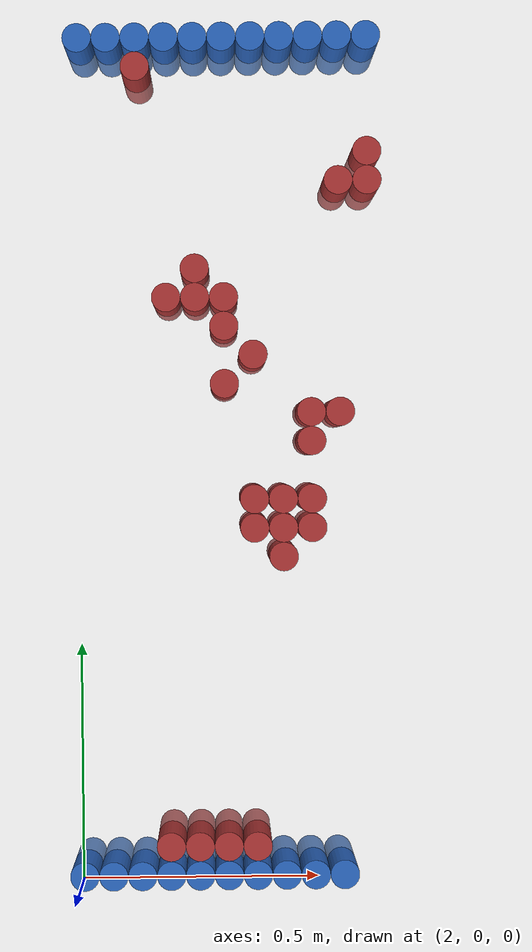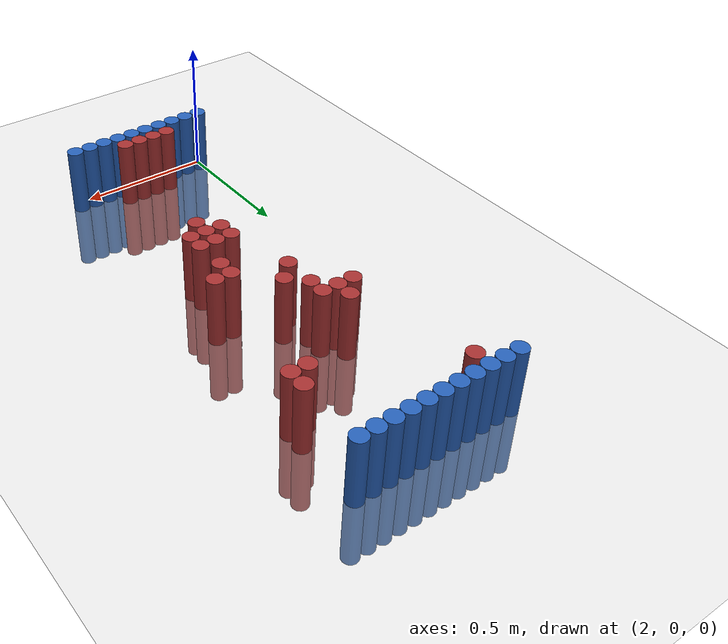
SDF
<sdf version="1.6">
 <world name="default">
  <model name="ground_plane">
   <static>1</static>
   <link name="link">
    <collision name="collision">
     <geometry><plane><normal>0 0 1</normal><size>100 100</size></plane></geometry>
     <surface><friction><ode><mu>100</mu><mu2>50</mu2></ode></friction></surface>
    </collision>
    <visual name="visual">
     <cast_shadows>0</cast_shadows>
     <geometry><plane><normal>0 0 1</normal><size>100 100</size></plane></geometry>
     <material>
      <script><uri>file://media/materials/scripts/gazebo.material</uri><name>Gazebo/Grey</name></script>
     </material>
    </visual>
   </link>
  </model>
  <model name="unit_cylinder_93">
   <static>1</static>
   <pose>2.010000 0.030000 0.000000 0.000000 0.000000 0.000000</pose>
   <link name="link">
    <inertial>
     <mass>1</mass>
     <inertia><ixx>0.145833</ixx><ixy>0</ixy><ixz>0</ixz><iyy>0.145833</iyy><iyz>0</iyz><izz>0.125</izz></inertia>
    </inertial>
    <collision name="collision">
     <geometry><cylinder><radius>0.030000</radius><length>0.5</length></cylinder></geometry>
    </collision>
    <visual name="visual">
     <geometry><cylinder><radius>0.030000</radius><length>0.5</length></cylinder></geometry>
     <material>
      <ambient>0.152000 0.379000 0.720000 1</ambient>
      <diffuse>0.152000 0.379000 0.720000 1</diffuse>
     </material>
     <material>
      <script><name>Gazebo/Grey</name><uri>file://media/materials/scripts/gazebo.material</uri></script>
     </material>
    </visual>
   </link>
  </model>
  <model name="unit_cylinder_94">
   <static>1</static>
   <pose>2.010000 1.770000 0.000000 0.000000 0.000000 0.000000</pose>
   <link name="link">
    <inertial>
     <mass>1</mass>
     <inertia><ixx>0.145833</ixx><ixy>0</ixy><ixz>0</ixz><iyy>0.145833</iyy><iyz>0</iyz><izz>0.125</izz></inertia>
    </inertial>
    <collision name="collision">
     <geometry><cylinder><radius>0.030000</radius><length>0.5</length></cylinder></geometry>
    </collision>
    <visual name="visual">
     <geometry><cylinder><radius>0.030000</radius><length>0.5</length></cylinder></geometry>
     <material>
      <ambient>0.152000 0.379000 0.720000 1</ambient>
      <diffuse>0.152000 0.379000 0.720000 1</diffuse>
     </material>
     <material>
      <script><name>Gazebo/Grey</name><uri>file://media/materials/scripts/gazebo.material</uri></script>
     </material>
    </visual>
   </link>
  </model>
  <model name="unit_cylinder_95">
   <static>1</static>
   <pose>2.070000 1.770000 0.000000 0.000000 0.000000 0.000000</pose>
   <link name="link">
    <inertial>
     <mass>1</mass>
     <inertia><ixx>0.145833</ixx><ixy>0</ixy><ixz>0</ixz><iyy>0.145833</iyy><iyz>0</iyz><izz>0.125</izz></inertia>
    </inertial>
    <collision name="collision">
     <geometry><cylinder><radius>0.030000</radius><length>0.5</length></cylinder></geometry>
    </collision>
    <visual name="visual">
     <geometry><cylinder><radius>0.030000</radius><length>0.5</length></cylinder></geometry>
     <material>
      <ambient>0.152000 0.379000 0.720000 1</ambient>
      <diffuse>0.152000 0.379000 0.720000 1</diffuse>
     </material>
     <material>
      <script><name>Gazebo/Grey</name><uri>file://media/materials/scripts/gazebo.material</uri></script>
     </material>
    </visual>
   </link>
  </model>
  <model name="unit_cylinder_96">
   <static>1</static>
   <pose>2.130000 1.770000 0.000000 0.000000 0.000000 0.000000</pose>
   <link name="link">
    <inertial>
     <mass>1</mass>
     <inertia><ixx>0.145833</ixx><ixy>0</ixy><ixz>0</ixz><iyy>0.145833</iyy><iyz>0</iyz><izz>0.125</izz></inertia>
    </inertial>
    <collision name="collision">
     <geometry><cylinder><radius>0.030000</radius><length>0.5</length></cylinder></geometry>
    </collision>
    <visual name="visual">
     <geometry><cylinder><radius>0.030000</radius><length>0.5</length></cylinder></geometry>
     <material>
      <ambient>0.152000 0.379000 0.720000 1</ambient>
      <diffuse>0.152000 0.379000 0.720000 1</diffuse>
     </material>
     <material>
      <script><name>Gazebo/Grey</name><uri>file://media/materials/scripts/gazebo.material</uri></script>
     </material>
    </visual>
   </link>
  </model>
  <model name="unit_cylinder_97">
   <static>1</static>
   <pose>2.190000 1.770000 0.000000 0.000000 0.000000 0.000000</pose>
   <link name="link">
    <inertial>
     <mass>1</mass>
     <inertia><ixx>0.145833</ixx><ixy>0</ixy><ixz>0</ixz><iyy>0.145833</iyy><iyz>0</iyz><izz>0.125</izz></inertia>
    </inertial>
    <collision name="collision">
     <geometry><cylinder><radius>0.030000</radius><length>0.5</length></cylinder></geometry>
    </collision>
    <visual name="visual">
     <geometry><cylinder><radius>0.030000</radius><length>0.5</length></cylinder></geometry>
     <material>
      <ambient>0.152000 0.379000 0.720000 1</ambient>
      <diffuse>0.152000 0.379000 0.720000 1</diffuse>
     </material>
     <material>
      <script><name>Gazebo/Grey</name><uri>file://media/materials/scripts/gazebo.material</uri></script>
     </material>
    </visual>
   </link>
  </model>
  <model name="unit_cylinder_98">
   <static>1</static>
   <pose>2.250000 1.770000 0.000000 0.000000 0.000000 0.000000</pose>
   <link name="link">
    <inertial>
     <mass>1</mass>
     <inertia><ixx>0.145833</ixx><ixy>0</ixy><ixz>0</ixz><iyy>0.145833</iyy><iyz>0</iyz><izz>0.125</izz></inertia>
    </inertial>
    <collision name="collision">
     <geometry><cylinder><radius>0.030000</radius><length>0.5</length></cylinder></geometry>
    </collision>
    <visual name="visual">
     <geometry><cylinder><radius>0.030000</radius><length>0.5</length></cylinder></geometry>
     <material>
      <ambient>0.152000 0.379000 0.720000 1</ambient>
      <diffuse>0.152000 0.379000 0.720000 1</diffuse>
     </material>
     <material>
      <script><name>Gazebo/Grey</name><uri>file://media/materials/scripts/gazebo.material</uri></script>
     </material>
    </visual>
   </link>
  </model>
  <model name="unit_cylinder_99">
   <static>1</static>
   <pose>2.310000 1.770000 0.000000 0.000000 0.000000 0.000000</pose>
   <link name="link">
    <inertial>
     <mass>1</mass>
     <inertia><ixx>0.145833</ixx><ixy>0</ixy><ixz>0</ixz><iyy>0.145833</iyy><iyz>0</iyz><izz>0.125</izz></inertia>
    </inertial>
    <collision name="collision">
     <geometry><cylinder><radius>0.030000</radius><length>0.5</length></cylinder></geometry>
    </collision>
    <visual name="visual">
     <geometry><cylinder><radius>0.030000</radius><length>0.5</length></cylinder></geometry>
     <material>
      <ambient>0.152000 0.379000 0.720000 1</ambient>
      <diffuse>0.152000 0.379000 0.720000 1</diffuse>
     </material>
     <material>
      <script><name>Gazebo/Grey</name><uri>file://media/materials/scripts/gazebo.material</uri></script>
     </material>
    </visual>
   </link>
  </model>
  <model name="unit_cylinder_100">
   <static>1</static>
   <pose>2.370000 1.770000 0.000000 0.000000 0.000000 0.000000</pose>
   <link name="link">
    <inertial>
     <mass>1</mass>
     <inertia><ixx>0.145833</ixx><ixy>0</ixy><ixz>0</ixz><iyy>0.145833</iyy><iyz>0</iyz><izz>0.125</izz></inertia>
    </inertial>
    <collision name="collision">
     <geometry><cylinder><radius>0.030000</radius><length>0.5</length></cylinder></geometry>
    </collision>
    <visual name="visual">
     <geometry><cylinder><radius>0.030000</radius><length>0.5</length></cylinder></geometry>
     <material>
      <ambient>0.152000 0.379000 0.720000 1</ambient>
      <diffuse>0.152000 0.379000 0.720000 1</diffuse>
     </material>
     <material>
      <script><name>Gazebo/Grey</name><uri>file://media/materials/scripts/gazebo.material</uri></script>
     </material>
    </visual>
   </link>
  </model>
  <model name="unit_cylinder_101">
   <static>1</static>
   <pose>2.430000 1.770000 0.000000 0.000000 0.000000 0.000000</pose>
   <link name="link">
    <inertial>
     <mass>1</mass>
     <inertia><ixx>0.145833</ixx><ixy>0</ixy><ixz>0</ixz><iyy>0.145833</iyy><iyz>0</iyz><izz>0.125</izz></inertia>
    </inertial>
    <collision name="collision">
     <geometry><cylinder><radius>0.030000</radius><length>0.5</length></cylinder></geometry>
    </collision>
    <visual name="visual">
     <geometry><cylinder><radius>0.030000</radius><length>0.5</length></cylinder></geometry>
     <material>
      <ambient>0.152000 0.379000 0.720000 1</ambient>
      <diffuse>0.152000 0.379000 0.720000 1</diffuse>
     </material>
     <material>
      <script><name>Gazebo/Grey</name><uri>file://media/materials/scripts/gazebo.material</uri></script>
     </material>
    </visual>
   </link>
  </model>
  <model name="unit_cylinder_102">
   <static>1</static>
   <pose>2.490000 1.770000 0.000000 0.000000 0.000000 0.000000</pose>
   <link name="link">
    <inertial>
     <mass>1</mass>
     <inertia><ixx>0.145833</ixx><ixy>0</ixy><ixz>0</ixz><iyy>0.145833</iyy><iyz>0</iyz><izz>0.125</izz></inertia>
    </inertial>
    <collision name="collision">
     <geometry><cylinder><radius>0.030000</radius><length>0.5</length></cylinder></geometry>
    </collision>
    <visual name="visual">
     <geometry><cylinder><radius>0.030000</radius><length>0.5</length></cylinder></geometry>
     <material>
      <ambient>0.152000 0.379000 0.720000 1</ambient>
      <diffuse>0.152000 0.379000 0.720000 1</diffuse>
     </material>
     <material>
      <script><name>Gazebo/Grey</name><uri>file://media/materials/scripts/gazebo.material</uri></script>
     </material>
    </visual>
   </link>
  </model>
  <model name="unit_cylinder_103">
   <static>1</static>
   <pose>2.550000 1.770000 0.000000 0.000000 0.000000 0.000000</pose>
   <link name="link">
    <inertial>
     <mass>1</mass>
     <inertia><ixx>0.145833</ixx><ixy>0</ixy><ixz>0</ixz><iyy>0.145833</iyy><iyz>0</iyz><izz>0.125</izz></inertia>
    </inertial>
    <collision name="collision">
     <geometry><cylinder><radius>0.030000</radius><length>0.5</length></cylinder></geometry>
    </collision>
    <visual name="visual">
     <geometry><cylinder><radius>0.030000</radius><length>0.5</length></cylinder></geometry>
     <material>
      <ambient>0.152000 0.379000 0.720000 1</ambient>
      <diffuse>0.152000 0.379000 0.720000 1</diffuse>
     </material>
     <material>
      <script><name>Gazebo/Grey</name><uri>file://media/materials/scripts/gazebo.material</uri></script>
     </material>
    </visual>
   </link>
  </model>
  <model name="unit_cylinder_104">
   <static>1</static>
   <pose>2.610000 1.770000 0.000000 0.000000 0.000000 0.000000</pose>
   <link name="link">
    <inertial>
     <mass>1</mass>
     <inertia><ixx>0.145833</ixx><ixy>0</ixy><ixz>0</ixz><iyy>0.145833</iyy><iyz>0</iyz><izz>0.125</izz></inertia>
    </inertial>
    <collision name="collision">
     <geometry><cylinder><radius>0.030000</radius><length>0.5</length></cylinder></geometry>
    </collision>
    <visual name="visual">
     <geometry><cylinder><radius>0.030000</radius><length>0.5</length></cylinder></geometry>
     <material>
      <ambient>0.152000 0.379000 0.720000 1</ambient>
      <diffuse>0.152000 0.379000 0.720000 1</diffuse>
     </material>
     <material>
      <script><name>Gazebo/Grey</name><uri>file://media/materials/scripts/gazebo.material</uri></script>
     </material>
    </visual>
   </link>
  </model>
  <model name="unit_cylinder_125">
   <static>1</static>
   <pose>2.130000 1.710000 0.000000 0.000000 0.000000 0.000000</pose>
   <link name="link">
    <inertial>
     <mass>1</mass>
     <inertia><ixx>0.145833</ixx><ixy>0</ixy><ixz>0</ixz><iyy>0.145833</iyy><iyz>0</iyz><izz>0.125</izz></inertia>
    </inertial>
    <collision name="collision">
     <geometry><cylinder><radius>0.030000</radius><length>0.5</length></cylinder></geometry>
    </collision>
    <visual name="visual">
     <geometry><cylinder><radius>0.030000</radius><length>0.5</length></cylinder></geometry>
     <material>
      <ambient>0.648000 0.192000 0.192000 1</ambient>
      <diffuse>0.648000 0.192000 0.192000 1</diffuse>
     </material>
     <material>
      <script><name>Gazebo/Grey</name><uri>file://media/materials/scripts/gazebo.material</uri></script>
     </material>
    </visual>
   </link>
  </model>
  <model name="unit_cylinder_138">
   <static>1</static>
   <pose>2.610000 1.530000 0.000000 0.000000 0.000000 0.000000</pose>
   <link name="link">
    <inertial>
     <mass>1</mass>
     <inertia><ixx>0.145833</ixx><ixy>0</ixy><ixz>0</ixz><iyy>0.145833</iyy><iyz>0</iyz><izz>0.125</izz></inertia>
    </inertial>
    <collision name="collision">
     <geometry><cylinder><radius>0.030000</radius><length>0.5</length></cylinder></geometry>
    </collision>
    <visual name="visual">
     <geometry><cylinder><radius>0.030000</radius><length>0.5</length></cylinder></geometry>
     <material>
      <ambient>0.648000 0.192000 0.192000 1</ambient>
      <diffuse>0.648000 0.192000 0.192000 1</diffuse>
     </material>
     <material>
      <script><name>Gazebo/Grey</name><uri>file://media/materials/scripts/gazebo.material</uri></script>
     </material>
    </visual>
   </link>
  </model>
  <model name="unit_cylinder_139">
   <static>1</static>
   <pose>2.550000 1.470000 0.000000 0.000000 0.000000 0.000000</pose>
   <link name="link">
    <inertial>
     <mass>1</mass>
     <inertia><ixx>0.145833</ixx><ixy>0</ixy><ixz>0</ixz><iyy>0.145833</iyy><iyz>0</iyz><izz>0.125</izz></inertia>
    </inertial>
    <collision name="collision">
     <geometry><cylinder><radius>0.030000</radius><length>0.5</length></cylinder></geometry>
    </collision>
    <visual name="visual">
     <geometry><cylinder><radius>0.030000</radius><length>0.5</length></cylinder></geometry>
     <material>
      <ambient>0.648000 0.192000 0.192000 1</ambient>
      <diffuse>0.648000 0.192000 0.192000 1</diffuse>
     </material>
     <material>
      <script><name>Gazebo/Grey</name><uri>file://media/materials/scripts/gazebo.material</uri></script>
     </material>
    </visual>
   </link>
  </model>
  <model name="unit_cylinder_140">
   <static>1</static>
   <pose>2.610000 1.470000 0.000000 0.000000 0.000000 0.000000</pose>
   <link name="link">
    <inertial>
     <mass>1</mass>
     <inertia><ixx>0.145833</ixx><ixy>0</ixy><ixz>0</ixz><iyy>0.145833</iyy><iyz>0</iyz><izz>0.125</izz></inertia>
    </inertial>
    <collision name="collision">
     <geometry><cylinder><radius>0.030000</radius><length>0.5</length></cylinder></geometry>
    </collision>
    <visual name="visual">
     <geometry><cylinder><radius>0.030000</radius><length>0.5</length></cylinder></geometry>
     <material>
      <ambient>0.648000 0.192000 0.192000 1</ambient>
      <diffuse>0.648000 0.192000 0.192000 1</diffuse>
     </material>
     <material>
      <script><name>Gazebo/Grey</name><uri>file://media/materials/scripts/gazebo.material</uri></script>
     </material>
    </visual>
   </link>
  </model>
  <model name="unit_cylinder_151">
   <static>1</static>
   <pose>2.250000 1.290000 0.000000 0.000000 0.000000 0.000000</pose>
   <link name="link">
    <inertial>
     <mass>1</mass>
     <inertia><ixx>0.145833</ixx><ixy>0</ixy><ixz>0</ixz><iyy>0.145833</iyy><iyz>0</iyz><izz>0.125</izz></inertia>
    </inertial>
    <collision name="collision">
     <geometry><cylinder><radius>0.030000</radius><length>0.5</length></cylinder></geometry>
    </collision>
    <visual name="visual">
     <geometry><cylinder><radius>0.030000</radius><length>0.5</length></cylinder></geometry>
     <material>
      <ambient>0.648000 0.192000 0.192000 1</ambient>
      <diffuse>0.648000 0.192000 0.192000 1</diffuse>
     </material>
     <material>
      <script><name>Gazebo/Grey</name><uri>file://media/materials/scripts/gazebo.material</uri></script>
     </material>
    </visual>
   </link>
  </model>
  <model name="unit_cylinder_155">
   <static>1</static>
   <pose>2.190000 1.230000 0.000000 0.000000 0.000000 0.000000</pose>
   <link name="link">
    <inertial>
     <mass>1</mass>
     <inertia><ixx>0.145833</ixx><ixy>0</ixy><ixz>0</ixz><iyy>0.145833</iyy><iyz>0</iyz><izz>0.125</izz></inertia>
    </inertial>
    <collision name="collision">
     <geometry><cylinder><radius>0.030000</radius><length>0.5</length></cylinder></geometry>
    </collision>
    <visual name="visual">
     <geometry><cylinder><radius>0.030000</radius><length>0.5</length></cylinder></geometry>
     <material>
      <ambient>0.648000 0.192000 0.192000 1</ambient>
      <diffuse>0.648000 0.192000 0.192000 1</diffuse>
     </material>
     <material>
      <script><name>Gazebo/Grey</name><uri>file://media/materials/scripts/gazebo.material</uri></script>
     </material>
    </visual>
   </link>
  </model>
  <model name="unit_cylinder_156">
   <static>1</static>
   <pose>2.250000 1.230000 0.000000 0.000000 0.000000 0.000000</pose>
   <link name="link">
    <inertial>
     <mass>1</mass>
     <inertia><ixx>0.145833</ixx><ixy>0</ixy><ixz>0</ixz><iyy>0.145833</iyy><iyz>0</iyz><izz>0.125</izz></inertia>
    </inertial>
    <collision name="collision">
     <geometry><cylinder><radius>0.030000</radius><length>0.5</length></cylinder></geometry>
    </collision>
    <visual name="visual">
     <geometry><cylinder><radius>0.030000</radius><length>0.5</length></cylinder></geometry>
     <material>
      <ambient>0.648000 0.192000 0.192000 1</ambient>
      <diffuse>0.648000 0.192000 0.192000 1</diffuse>
     </material>
     <material>
      <script><name>Gazebo/Grey</name><uri>file://media/materials/scripts/gazebo.material</uri></script>
     </material>
    </visual>
   </link>
  </model>
  <model name="unit_cylinder_157">
   <static>1</static>
   <pose>2.310000 1.230000 0.000000 0.000000 0.000000 0.000000</pose>
   <link name="link">
    <inertial>
     <mass>1</mass>
     <inertia><ixx>0.145833</ixx><ixy>0</ixy><ixz>0</ixz><iyy>0.145833</iyy><iyz>0</iyz><izz>0.125</izz></inertia>
    </inertial>
    <collision name="collision">
     <geometry><cylinder><radius>0.030000</radius><length>0.5</length></cylinder></geometry>
    </collision>
    <visual name="visual">
     <geometry><cylinder><radius>0.030000</radius><length>0.5</length></cylinder></geometry>
     <material>
      <ambient>0.648000 0.192000 0.192000 1</ambient>
      <diffuse>0.648000 0.192000 0.192000 1</diffuse>
     </material>
     <material>
      <script><name>Gazebo/Grey</name><uri>file://media/materials/scripts/gazebo.material</uri></script>
     </material>
    </visual>
   </link>
  </model>
  <model name="unit_cylinder_160">
   <static>1</static>
   <pose>2.310000 1.170000 0.000000 0.000000 0.000000 0.000000</pose>
   <link name="link">
    <inertial>
     <mass>1</mass>
     <inertia><ixx>0.145833</ixx><ixy>0</ixy><ixz>0</ixz><iyy>0.145833</iyy><iyz>0</iyz><izz>0.125</izz></inertia>
    </inertial>
    <collision name="collision">
     <geometry><cylinder><radius>0.030000</radius><length>0.5</length></cylinder></geometry>
    </collision>
    <visual name="visual">
     <geometry><cylinder><radius>0.030000</radius><length>0.5</length></cylinder></geometry>
     <material>
      <ambient>0.648000 0.192000 0.192000 1</ambient>
      <diffuse>0.648000 0.192000 0.192000 1</diffuse>
     </material>
     <material>
      <script><name>Gazebo/Grey</name><uri>file://media/materials/scripts/gazebo.material</uri></script>
     </material>
    </visual>
   </link>
  </model>
  <model name="unit_cylinder_165">
   <static>1</static>
   <pose>2.370000 1.110000 0.000000 0.000000 0.000000 0.000000</pose>
   <link name="link">
    <inertial>
     <mass>1</mass>
     <inertia><ixx>0.145833</ixx><ixy>0</ixy><ixz>0</ixz><iyy>0.145833</iyy><iyz>0</iyz><izz>0.125</izz></inertia>
    </inertial>
    <collision name="collision">
     <geometry><cylinder><radius>0.030000</radius><length>0.5</length></cylinder></geometry>
    </collision>
    <visual name="visual">
     <geometry><cylinder><radius>0.030000</radius><length>0.5</length></cylinder></geometry>
     <material>
      <ambient>0.648000 0.192000 0.192000 1</ambient>
      <diffuse>0.648000 0.192000 0.192000 1</diffuse>
     </material>
     <material>
      <script><name>Gazebo/Grey</name><uri>file://media/materials/scripts/gazebo.material</uri></script>
     </material>
    </visual>
   </link>
  </model>
  <model name="unit_cylinder_169">
   <static>1</static>
   <pose>2.310000 1.050000 0.000000 0.000000 0.000000 0.000000</pose>
   <link name="link">
    <inertial>
     <mass>1</mass>
     <inertia><ixx>0.145833</ixx><ixy>0</ixy><ixz>0</ixz><iyy>0.145833</iyy><iyz>0</iyz><izz>0.125</izz></inertia>
    </inertial>
    <collision name="collision">
     <geometry><cylinder><radius>0.030000</radius><length>0.5</length></cylinder></geometry>
    </collision>
    <visual name="visual">
     <geometry><cylinder><radius>0.030000</radius><length>0.5</length></cylinder></geometry>
     <material>
      <ambient>0.648000 0.192000 0.192000 1</ambient>
      <diffuse>0.648000 0.192000 0.192000 1</diffuse>
     </material>
     <material>
      <script><name>Gazebo/Grey</name><uri>file://media/materials/scripts/gazebo.material</uri></script>
     </material>
    </visual>
   </link>
  </model>
  <model name="unit_cylinder_172">
   <static>1</static>
   <pose>2.490000 0.990000 0.000000 0.000000 0.000000 0.000000</pose>
   <link name="link">
    <inertial>
     <mass>1</mass>
     <inertia><ixx>0.145833</ixx><ixy>0</ixy><ixz>0</ixz><iyy>0.145833</iyy><iyz>0</iyz><izz>0.125</izz></inertia>
    </inertial>
    <collision name="collision">
     <geometry><cylinder><radius>0.030000</radius><length>0.5</length></cylinder></geometry>
    </collision>
    <visual name="visual">
     <geometry><cylinder><radius>0.030000</radius><length>0.5</length></cylinder></geometry>
     <material>
      <ambient>0.648000 0.192000 0.192000 1</ambient>
      <diffuse>0.648000 0.192000 0.192000 1</diffuse>
     </material>
     <material>
      <script><name>Gazebo/Grey</name><uri>file://media/materials/scripts/gazebo.material</uri></script>
     </material>
    </visual>
   </link>
  </model>
  <model name="unit_cylinder_173">
   <static>1</static>
   <pose>2.550000 0.990000 0.000000 0.000000 0.000000 0.000000</pose>
   <link name="link">
    <inertial>
     <mass>1</mass>
     <inertia><ixx>0.145833</ixx><ixy>0</ixy><ixz>0</ixz><iyy>0.145833</iyy><iyz>0</iyz><izz>0.125</izz></inertia>
    </inertial>
    <collision name="collision">
     <geometry><cylinder><radius>0.030000</radius><length>0.5</length></cylinder></geometry>
    </collision>
    <visual name="visual">
     <geometry><cylinder><radius>0.030000</radius><length>0.5</length></cylinder></geometry>
     <material>
      <ambient>0.648000 0.192000 0.192000 1</ambient>
      <diffuse>0.648000 0.192000 0.192000 1</diffuse>
     </material>
     <material>
      <script><name>Gazebo/Grey</name><uri>file://media/materials/scripts/gazebo.material</uri></script>
     </material>
    </visual>
   </link>
  </model>
  <model name="unit_cylinder_174">
   <static>1</static>
   <pose>2.490000 0.930000 0.000000 0.000000 0.000000 0.000000</pose>
   <link name="link">
    <inertial>
     <mass>1</mass>
     <inertia><ixx>0.145833</ixx><ixy>0</ixy><ixz>0</ixz><iyy>0.145833</iyy><iyz>0</iyz><izz>0.125</izz></inertia>
    </inertial>
    <collision name="collision">
     <geometry><cylinder><radius>0.030000</radius><length>0.5</length></cylinder></geometry>
    </collision>
    <visual name="visual">
     <geometry><cylinder><radius>0.030000</radius><length>0.5</length></cylinder></geometry>
     <material>
      <ambient>0.648000 0.192000 0.192000 1</ambient>
      <diffuse>0.648000 0.192000 0.192000 1</diffuse>
     </material>
     <material>
      <script><name>Gazebo/Grey</name><uri>file://media/materials/scripts/gazebo.material</uri></script>
     </material>
    </visual>
   </link>
  </model>
  <model name="unit_cylinder_175">
   <static>1</static>
   <pose>2.370000 0.810000 0.000000 0.000000 0.000000 0.000000</pose>
   <link name="link">
    <inertial>
     <mass>1</mass>
     <inertia><ixx>0.145833</ixx><ixy>0</ixy><ixz>0</ixz><iyy>0.145833</iyy><iyz>0</iyz><izz>0.125</izz></inertia>
    </inertial>
    <collision name="collision">
     <geometry><cylinder><radius>0.030000</radius><length>0.5</length></cylinder></geometry>
    </collision>
    <visual name="visual">
     <geometry><cylinder><radius>0.030000</radius><length>0.5</length></cylinder></geometry>
     <material>
      <ambient>0.648000 0.192000 0.192000 1</ambient>
      <diffuse>0.648000 0.192000 0.192000 1</diffuse>
     </material>
     <material>
      <script><name>Gazebo/Grey</name><uri>file://media/materials/scripts/gazebo.material</uri></script>
     </material>
    </visual>
   </link>
  </model>
  <model name="unit_cylinder_176">
   <static>1</static>
   <pose>2.430000 0.810000 0.000000 0.000000 0.000000 0.000000</pose>
   <link name="link">
    <inertial>
     <mass>1</mass>
     <inertia><ixx>0.145833</ixx><ixy>0</ixy><ixz>0</ixz><iyy>0.145833</iyy><iyz>0</iyz><izz>0.125</izz></inertia>
    </inertial>
    <collision name="collision">
     <geometry><cylinder><radius>0.030000</radius><length>0.5</length></cylinder></geometry>
    </collision>
    <visual name="visual">
     <geometry><cylinder><radius>0.030000</radius><length>0.5</length></cylinder></geometry>
     <material>
      <ambient>0.648000 0.192000 0.192000 1</ambient>
      <diffuse>0.648000 0.192000 0.192000 1</diffuse>
     </material>
     <material>
      <script><name>Gazebo/Grey</name><uri>file://media/materials/scripts/gazebo.material</uri></script>
     </material>
    </visual>
   </link>
  </model>
  <model name="unit_cylinder_177">
   <static>1</static>
   <pose>2.490000 0.810000 0.000000 0.000000 0.000000 0.000000</pose>
   <link name="link">
    <inertial>
     <mass>1</mass>
     <inertia><ixx>0.145833</ixx><ixy>0</ixy><ixz>0</ixz><iyy>0.145833</iyy><iyz>0</iyz><izz>0.125</izz></inertia>
    </inertial>
    <collision name="collision">
     <geometry><cylinder><radius>0.030000</radius><length>0.5</length></cylinder></geometry>
    </collision>
    <visual name="visual">
     <geometry><cylinder><radius>0.030000</radius><length>0.5</length></cylinder></geometry>
     <material>
      <ambient>0.648000 0.192000 0.192000 1</ambient>
      <diffuse>0.648000 0.192000 0.192000 1</diffuse>
     </material>
     <material>
      <script><name>Gazebo/Grey</name><uri>file://media/materials/scripts/gazebo.material</uri></script>
     </material>
    </visual>
   </link>
  </model>
  <model name="unit_cylinder_178">
   <static>1</static>
   <pose>2.370000 0.750000 0.000000 0.000000 0.000000 0.000000</pose>
   <link name="link">
    <inertial>
     <mass>1</mass>
     <inertia><ixx>0.145833</ixx><ixy>0</ixy><ixz>0</ixz><iyy>0.145833</iyy><iyz>0</iyz><izz>0.125</izz></inertia>
    </inertial>
    <collision name="collision">
     <geometry><cylinder><radius>0.030000</radius><length>0.5</length></cylinder></geometry>
    </collision>
    <visual name="visual">
     <geometry><cylinder><radius>0.030000</radius><length>0.5</length></cylinder></geometry>
     <material>
      <ambient>0.648000 0.192000 0.192000 1</ambient>
      <diffuse>0.648000 0.192000 0.192000 1</diffuse>
     </material>
     <material>
      <script><name>Gazebo/Grey</name><uri>file://media/materials/scripts/gazebo.material</uri></script>
     </material>
    </visual>
   </link>
  </model>
  <model name="unit_cylinder_179">
   <static>1</static>
   <pose>2.430000 0.750000 0.000000 0.000000 0.000000 0.000000</pose>
   <link name="link">
    <inertial>
     <mass>1</mass>
     <inertia><ixx>0.145833</ixx><ixy>0</ixy><ixz>0</ixz><iyy>0.145833</iyy><iyz>0</iyz><izz>0.125</izz></inertia>
    </inertial>
    <collision name="collision">
     <geometry><cylinder><radius>0.030000</radius><length>0.5</length></cylinder></geometry>
    </collision>
    <visual name="visual">
     <geometry><cylinder><radius>0.030000</radius><length>0.5</length></cylinder></geometry>
     <material>
      <ambient>0.648000 0.192000 0.192000 1</ambient>
      <diffuse>0.648000 0.192000 0.192000 1</diffuse>
     </material>
     <material>
      <script><name>Gazebo/Grey</name><uri>file://media/materials/scripts/gazebo.material</uri></script>
     </material>
    </visual>
   </link>
  </model>
  <model name="unit_cylinder_180">
   <static>1</static>
   <pose>2.490000 0.750000 0.000000 0.000000 0.000000 0.000000</pose>
   <link name="link">
    <inertial>
     <mass>1</mass>
     <inertia><ixx>0.145833</ixx><ixy>0</ixy><ixz>0</ixz><iyy>0.145833</iyy><iyz>0</iyz><izz>0.125</izz></inertia>
    </inertial>
    <collision name="collision">
     <geometry><cylinder><radius>0.030000</radius><length>0.5</length></cylinder></geometry>
    </collision>
    <visual name="visual">
     <geometry><cylinder><radius>0.030000</radius><length>0.5</length></cylinder></geometry>
     <material>
      <ambient>0.648000 0.192000 0.192000 1</ambient>
      <diffuse>0.648000 0.192000 0.192000 1</diffuse>
     </material>
     <material>
      <script><name>Gazebo/Grey</name><uri>file://media/materials/scripts/gazebo.material</uri></script>
     </material>
    </visual>
   </link>
  </model>
  <model name="unit_cylinder_181">
   <static>1</static>
   <pose>2.430000 0.690000 0.000000 0.000000 0.000000 0.000000</pose>
   <link name="link">
    <inertial>
     <mass>1</mass>
     <inertia><ixx>0.145833</ixx><ixy>0</ixy><ixz>0</ixz><iyy>0.145833</iyy><iyz>0</iyz><izz>0.125</izz></inertia>
    </inertial>
    <collision name="collision">
     <geometry><cylinder><radius>0.030000</radius><length>0.5</length></cylinder></geometry>
    </collision>
    <visual name="visual">
     <geometry><cylinder><radius>0.030000</radius><length>0.5</length></cylinder></geometry>
     <material>
      <ambient>0.648000 0.192000 0.192000 1</ambient>
      <diffuse>0.648000 0.192000 0.192000 1</diffuse>
     </material>
     <material>
      <script><name>Gazebo/Grey</name><uri>file://media/materials/scripts/gazebo.material</uri></script>
     </material>
    </visual>
   </link>
  </model>
  <model name="unit_cylinder_190">
   <static>1</static>
   <pose>2.190000 0.090000 0.000000 0.000000 0.000000 0.000000</pose>
   <link name="link">
    <inertial>
     <mass>1</mass>
     <inertia><ixx>0.145833</ixx><ixy>0</ixy><ixz>0</ixz><iyy>0.145833</iyy><iyz>0</iyz><izz>0.125</izz></inertia>
    </inertial>
    <collision name="collision">
     <geometry><cylinder><radius>0.030000</radius><length>0.5</length></cylinder></geometry>
    </collision>
    <visual name="visual">
     <geometry><cylinder><radius>0.030000</radius><length>0.5</length></cylinder></geometry>
     <material>
      <ambient>0.648000 0.192000 0.192000 1</ambient>
      <diffuse>0.648000 0.192000 0.192000 1</diffuse>
     </material>
     <material>
      <script><name>Gazebo/Grey</name><uri>file://media/materials/scripts/gazebo.material</uri></script>
     </material>
    </visual>
   </link>
  </model>
  <model name="unit_cylinder_191">
   <static>1</static>
   <pose>2.250000 0.090000 0.000000 0.000000 0.000000 0.000000</pose>
   <link name="link">
    <inertial>
     <mass>1</mass>
     <inertia><ixx>0.145833</ixx><ixy>0</ixy><ixz>0</ixz><iyy>0.145833</iyy><iyz>0</iyz><izz>0.125</izz></inertia>
    </inertial>
    <collision name="collision">
     <geometry><cylinder><radius>0.030000</radius><length>0.5</length></cylinder></geometry>
    </collision>
    <visual name="visual">
     <geometry><cylinder><radius>0.030000</radius><length>0.5</length></cylinder></geometry>
     <material>
      <ambient>0.648000 0.192000 0.192000 1</ambient>
      <diffuse>0.648000 0.192000 0.192000 1</diffuse>
     </material>
     <material>
      <script><name>Gazebo/Grey</name><uri>file://media/materials/scripts/gazebo.material</uri></script>
     </material>
    </visual>
   </link>
  </model>
  <model name="unit_cylinder_192">
   <static>1</static>
   <pose>2.310000 0.090000 0.000000 0.000000 0.000000 0.000000</pose>
   <link name="link">
    <inertial>
     <mass>1</mass>
     <inertia><ixx>0.145833</ixx><ixy>0</ixy><ixz>0</ixz><iyy>0.145833</iyy><iyz>0</iyz><izz>0.125</izz></inertia>
    </inertial>
    <collision name="collision">
     <geometry><cylinder><radius>0.030000</radius><length>0.5</length></cylinder></geometry>
    </collision>
    <visual name="visual">
     <geometry><cylinder><radius>0.030000</radius><length>0.5</length></cylinder></geometry>
     <material>
      <ambient>0.648000 0.192000 0.192000 1</ambient>
      <diffuse>0.648000 0.192000 0.192000 1</diffuse>
     </material>
     <material>
      <script><name>Gazebo/Grey</name><uri>file://media/materials/scripts/gazebo.material</uri></script>
     </material>
    </visual>
   </link>
  </model>
  <model name="unit_cylinder_193">
   <static>1</static>
   <pose>2.370000 0.090000 0.000000 0.000000 0.000000 0.000000</pose>
   <link name="link">
    <inertial>
     <mass>1</mass>
     <inertia><ixx>0.145833</ixx><ixy>0</ixy><ixz>0</ixz><iyy>0.145833</iyy><iyz>0</iyz><izz>0.125</izz></inertia>
    </inertial>
    <collision name="collision">
     <geometry><cylinder><radius>0.030000</radius><length>0.5</length></cylinder></geometry>
    </collision>
    <visual name="visual">
     <geometry><cylinder><radius>0.030000</radius><length>0.5</length></cylinder></geometry>
     <material>
      <ambient>0.648000 0.192000 0.192000 1</ambient>
      <diffuse>0.648000 0.192000 0.192000 1</diffuse>
     </material>
     <material>
      <script><name>Gazebo/Grey</name><uri>file://media/materials/scripts/gazebo.material</uri></script>
     </material>
    </visual>
   </link>
  </model>
  <model name="unit_cylinder_202">
   <static>1</static>
   <pose>2.070000 0.030000 0.000000 0.000000 0.000000 0.000000</pose>
   <link name="link">
    <inertial>
     <mass>1</mass>
     <inertia><ixx>0.145833</ixx><ixy>0</ixy><ixz>0</ixz><iyy>0.145833</iyy><iyz>0</iyz><izz>0.125</izz></inertia>
    </inertial>
    <collision name="collision">
     <geometry><cylinder><radius>0.030000</radius><length>0.5</length></cylinder></geometry>
    </collision>
    <visual name="visual">
     <geometry><cylinder><radius>0.030000</radius><length>0.5</length></cylinder></geometry>
     <material>
      <ambient>0.152000 0.379000 0.720000 1</ambient>
      <diffuse>0.152000 0.379000 0.720000 1</diffuse>
     </material>
     <material>
      <script><name>Gazebo/Grey</name><uri>file://media/materials/scripts/gazebo.material</uri></script>
     </material>
    </visual>
   </link>
  </model>
  <model name="unit_cylinder_203">
   <static>1</static>
   <pose>2.130000 0.030000 0.000000 0.000000 0.000000 0.000000</pose>
   <link name="link">
    <inertial>
     <mass>1</mass>
     <inertia><ixx>0.145833</ixx><ixy>0</ixy><ixz>0</ixz><iyy>0.145833</iyy><iyz>0</iyz><izz>0.125</izz></inertia>
    </inertial>
    <collision name="collision">
     <geometry><cylinder><radius>0.030000</radius><length>0.5</length></cylinder></geometry>
    </collision>
    <visual name="visual">
     <geometry><cylinder><radius>0.030000</radius><length>0.5</length></cylinder></geometry>
     <material>
      <ambient>0.152000 0.379000 0.720000 1</ambient>
      <diffuse>0.152000 0.379000 0.720000 1</diffuse>
     </material>
     <material>
      <script><name>Gazebo/Grey</name><uri>file://media/materials/scripts/gazebo.material</uri></script>
     </material>
    </visual>
   </link>
  </model>
  <model name="unit_cylinder_204">
   <static>1</static>
   <pose>2.190000 0.030000 0.000000 0.000000 0.000000 0.000000</pose>
   <link name="link">
    <inertial>
     <mass>1</mass>
     <inertia><ixx>0.145833</ixx><ixy>0</ixy><ixz>0</ixz><iyy>0.145833</iyy><iyz>0</iyz><izz>0.125</izz></inertia>
    </inertial>
    <collision name="collision">
     <geometry><cylinder><radius>0.030000</radius><length>0.5</length></cylinder></geometry>
    </collision>
    <visual name="visual">
     <geometry><cylinder><radius>0.030000</radius><length>0.5</length></cylinder></geometry>
     <material>
      <ambient>0.152000 0.379000 0.720000 1</ambient>
      <diffuse>0.152000 0.379000 0.720000 1</diffuse>
     </material>
     <material>
      <script><name>Gazebo/Grey</name><uri>file://media/materials/scripts/gazebo.material</uri></script>
     </material>
    </visual>
   </link>
  </model>
  <model name="unit_cylinder_205">
   <static>1</static>
   <pose>2.250000 0.030000 0.000000 0.000000 0.000000 0.000000</pose>
   <link name="link">
    <inertial>
     <mass>1</mass>
     <inertia><ixx>0.145833</ixx><ixy>0</ixy><ixz>0</ixz><iyy>0.145833</iyy><iyz>0</iyz><izz>0.125</izz></inertia>
    </inertial>
    <collision name="collision">
     <geometry><cylinder><radius>0.030000</radius><length>0.5</length></cylinder></geometry>
    </collision>
    <visual name="visual">
     <geometry><cylinder><radius>0.030000</radius><length>0.5</length></cylinder></geometry>
     <material>
      <ambient>0.152000 0.379000 0.720000 1</ambient>
      <diffuse>0.152000 0.379000 0.720000 1</diffuse>
     </material>
     <material>
      <script><name>Gazebo/Grey</name><uri>file://media/materials/scripts/gazebo.material</uri></script>
     </material>
    </visual>
   </link>
  </model>
  <model name="unit_cylinder_206">
   <static>1</static>
   <pose>2.310000 0.030000 0.000000 0.000000 0.000000 0.000000</pose>
   <link name="link">
    <inertial>
     <mass>1</mass>
     <inertia><ixx>0.145833</ixx><ixy>0</ixy><ixz>0</ixz><iyy>0.145833</iyy><iyz>0</iyz><izz>0.125</izz></inertia>
    </inertial>
    <collision name="collision">
     <geometry><cylinder><radius>0.030000</radius><length>0.5</length></cylinder></geometry>
    </collision>
    <visual name="visual">
     <geometry><cylinder><radius>0.030000</radius><length>0.5</length></cylinder></geometry>
     <material>
      <ambient>0.152000 0.379000 0.720000 1</ambient>
      <diffuse>0.152000 0.379000 0.720000 1</diffuse>
     </material>
     <material>
      <script><name>Gazebo/Grey</name><uri>file://media/materials/scripts/gazebo.material</uri></script>
     </material>
    </visual>
   </link>
  </model>
  <model name="unit_cylinder_207">
   <static>1</static>
   <pose>2.370000 0.030000 0.000000 0.000000 0.000000 0.000000</pose>
   <link name="link">
    <inertial>
     <mass>1</mass>
     <inertia><ixx>0.145833</ixx><ixy>0</ixy><ixz>0</ixz><iyy>0.145833</iyy><iyz>0</iyz><izz>0.125</izz></inertia>
    </inertial>
    <collision name="collision">
     <geometry><cylinder><radius>0.030000</radius><length>0.5</length></cylinder></geometry>
    </collision>
    <visual name="visual">
     <geometry><cylinder><radius>0.030000</radius><length>0.5</length></cylinder></geometry>
     <material>
      <ambient>0.152000 0.379000 0.720000 1</ambient>
      <diffuse>0.152000 0.379000 0.720000 1</diffuse>
     </material>
     <material>
      <script><name>Gazebo/Grey</name><uri>file://media/materials/scripts/gazebo.material</uri></script>
     </material>
    </visual>
   </link>
  </model>
  <model name="unit_cylinder_208">
   <static>1</static>
   <pose>2.430000 0.030000 0.000000 0.000000 0.000000 0.000000</pose>
   <link name="link">
    <inertial>
     <mass>1</mass>
     <inertia><ixx>0.145833</ixx><ixy>0</ixy><ixz>0</ixz><iyy>0.145833</iyy><iyz>0</iyz><izz>0.125</izz></inertia>
    </inertial>
    <collision name="collision">
     <geometry><cylinder><radius>0.030000</radius><length>0.5</length></cylinder></geometry>
    </collision>
    <visual name="visual">
     <geometry><cylinder><radius>0.030000</radius><length>0.5</length></cylinder></geometry>
     <material>
      <ambient>0.152000 0.379000 0.720000 1</ambient>
      <diffuse>0.152000 0.379000 0.720000 1</diffuse>
     </material>
     <material>
      <script><name>Gazebo/Grey</name><uri>file://media/materials/scripts/gazebo.material</uri></script>
     </material>
    </visual>
   </link>
  </model>
  <model name="unit_cylinder_209">
   <static>1</static>
   <pose>2.490000 0.030000 0.000000 0.000000 0.000000 0.000000</pose>
   <link name="link">
    <inertial>
     <mass>1</mass>
     <inertia><ixx>0.145833</ixx><ixy>0</ixy><ixz>0</ixz><iyy>0.145833</iyy><iyz>0</iyz><izz>0.125</izz></inertia>
    </inertial>
    <collision name="collision">
     <geometry><cylinder><radius>0.030000</radius><length>0.5</length></cylinder></geometry>
    </collision>
    <visual name="visual">
     <geometry><cylinder><radius>0.030000</radius><length>0.5</length></cylinder></geometry>
     <material>
      <ambient>0.152000 0.379000 0.720000 1</ambient>
      <diffuse>0.152000 0.379000 0.720000 1</diffuse>
     </material>
     <material>
      <script><name>Gazebo/Grey</name><uri>file://media/materials/scripts/gazebo.material</uri></script>
     </material>
    </visual>
   </link>
  </model>
  <model name="unit_cylinder_210">
   <static>1</static>
   <pose>2.550000 0.030000 0.000000 0.000000 0.000000 0.000000</pose>
   <link name="link">
    <inertial>
     <mass>1</mass>
     <inertia><ixx>0.145833</ixx><ixy>0</ixy><ixz>0</ixz><iyy>0.145833</iyy><iyz>0</iyz><izz>0.125</izz></inertia>
    </inertial>
    <collision name="collision">
     <geometry><cylinder><radius>0.030000</radius><length>0.5</length></cylinder></geometry>
    </collision>
    <visual name="visual">
     <geometry><cylinder><radius>0.030000</radius><length>0.5</length></cylinder></geometry>
     <material>
      <ambient>0.152000 0.379000 0.720000 1</ambient>
      <diffuse>0.152000 0.379000 0.720000 1</diffuse>
     </material>
     <material>
      <script><name>Gazebo/Grey</name><uri>file://media/materials/scripts/gazebo.material</uri></script>
     </material>
    </visual>
   </link>
  </model>
 </world>
</sdf>
